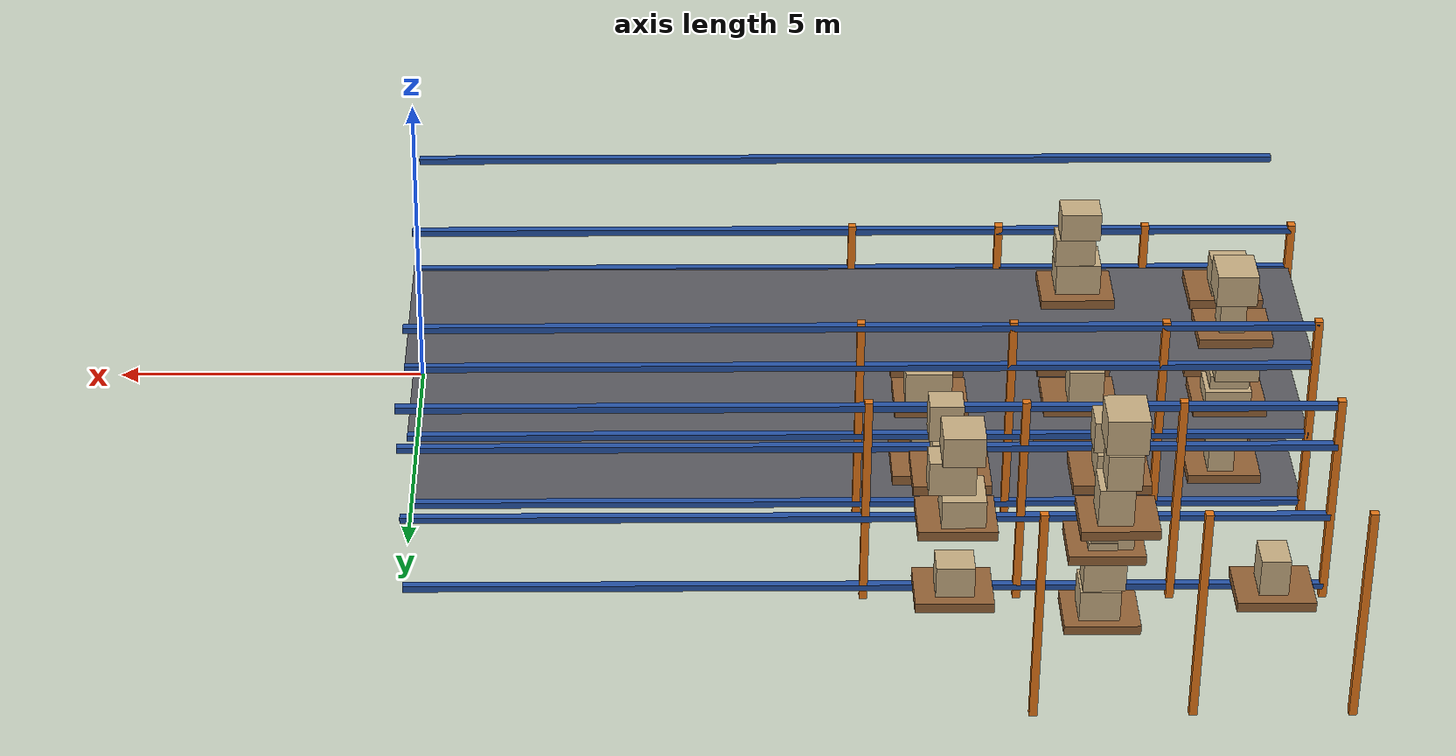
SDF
<sdf version="1.7">
 <world name="default">
  <model name="warehouse_racks">
   <static>1</static>
   <link name="r10_b3_1">
    <pose>-7 -1.2 3.4 0 0 0</pose>
    <collision name="c"><geometry><box><size>14 0.12 0.1</size></box></geometry></collision>
    <visual name="v">
     <geometry><box><size>14 0.12 0.1</size></box></geometry>
     <material>
      <ambient>0.149 0.329 0.659 1</ambient>
      <diffuse>0.149 0.329 0.659 1</diffuse>
      <specular>0.1 0.1 0.1 1</specular>
     </material>
    </visual>
   </link>
   <link name="r20_u0_0">
    <pose>-14 1.2 1.75 0 0 0</pose>
    <collision name="c"><geometry><box><size>0.12 0.12 3.5</size></box></geometry></collision>
    <visual name="v">
     <geometry><box><size>0.12 0.12 3.5</size></box></geometry>
     <material>
      <ambient>0.910 0.471 0.086 1</ambient>
      <diffuse>0.910 0.471 0.086 1</diffuse>
      <specular>0.1 0.1 0.1 1</specular>
     </material>
    </visual>
   </link>
   <link name="r20_u0_1">
    <pose>-14 4.2 1.75 0 0 0</pose>
    <collision name="c"><geometry><box><size>0.12 0.12 3.5</size></box></geometry></collision>
    <visual name="v">
     <geometry><box><size>0.12 0.12 3.5</size></box></geometry>
     <material>
      <ambient>0.910 0.471 0.086 1</ambient>
      <diffuse>0.910 0.471 0.086 1</diffuse>
      <specular>0.1 0.1 0.1 1</specular>
     </material>
    </visual>
   </link>
   <link name="r20_u1_0">
    <pose>-11.6667 1.2 1.75 0 0 0</pose>
    <collision name="c"><geometry><box><size>0.12 0.12 3.5</size></box></geometry></collision>
    <visual name="v">
     <geometry><box><size>0.12 0.12 3.5</size></box></geometry>
     <material>
      <ambient>0.910 0.471 0.086 1</ambient>
      <diffuse>0.910 0.471 0.086 1</diffuse>
      <specular>0.1 0.1 0.1 1</specular>
     </material>
    </visual>
   </link>
   <link name="r20_u1_1">
    <pose>-11.6667 4.2 1.75 0 0 0</pose>
    <collision name="c"><geometry><box><size>0.12 0.12 3.5</size></box></geometry></collision>
    <visual name="v">
     <geometry><box><size>0.12 0.12 3.5</size></box></geometry>
     <material>
      <ambient>0.910 0.471 0.086 1</ambient>
      <diffuse>0.910 0.471 0.086 1</diffuse>
      <specular>0.1 0.1 0.1 1</specular>
     </material>
    </visual>
   </link>
   <link name="r20_u2_0">
    <pose>-9.33333 1.2 1.75 0 0 0</pose>
    <collision name="c"><geometry><box><size>0.12 0.12 3.5</size></box></geometry></collision>
    <visual name="v">
     <geometry><box><size>0.12 0.12 3.5</size></box></geometry>
     <material>
      <ambient>0.910 0.471 0.086 1</ambient>
      <diffuse>0.910 0.471 0.086 1</diffuse>
      <specular>0.1 0.1 0.1 1</specular>
     </material>
    </visual>
   </link>
   <link name="r20_u2_1">
    <pose>-9.33333 4.2 1.75 0 0 0</pose>
    <collision name="c"><geometry><box><size>0.12 0.12 3.5</size></box></geometry></collision>
    <visual name="v">
     <geometry><box><size>0.12 0.12 3.5</size></box></geometry>
     <material>
      <ambient>0.910 0.471 0.086 1</ambient>
      <diffuse>0.910 0.471 0.086 1</diffuse>
      <specular>0.1 0.1 0.1 1</specular>
     </material>
    </visual>
   </link>
   <link name="r20_u3_0">
    <pose>-7 1.2 1.75 0 0 0</pose>
    <collision name="c"><geometry><box><size>0.12 0.12 3.5</size></box></geometry></collision>
    <visual name="v">
     <geometry><box><size>0.12 0.12 3.5</size></box></geometry>
     <material>
      <ambient>0.910 0.471 0.086 1</ambient>
      <diffuse>0.910 0.471 0.086 1</diffuse>
      <specular>0.1 0.1 0.1 1</specular>
     </material>
    </visual>
   </link>
   <link name="r20_u3_1">
    <pose>-7 4.2 1.75 0 0 0</pose>
    <collision name="c"><geometry><box><size>0.12 0.12 3.5</size></box></geometry></collision>
    <visual name="v">
     <geometry><box><size>0.12 0.12 3.5</size></box></geometry>
     <material>
      <ambient>0.910 0.471 0.086 1</ambient>
      <diffuse>0.910 0.471 0.086 1</diffuse>
      <specular>0.1 0.1 0.1 1</specular>
     </material>
    </visual>
   </link>
   <link name="r20_b0_0">
    <pose>-7 1.2 0.2 0 0 0</pose>
    <collision name="c"><geometry><box><size>14 0.12 0.1</size></box></geometry></collision>
    <visual name="v">
     <geometry><box><size>14 0.12 0.1</size></box></geometry>
     <material>
      <ambient>0.149 0.329 0.659 1</ambient>
      <diffuse>0.149 0.329 0.659 1</diffuse>
      <specular>0.1 0.1 0.1 1</specular>
     </material>
    </visual>
   </link>
   <link name="r20_b0_1">
    <pose>-7 4.2 0.2 0 0 0</pose>
    <collision name="c"><geometry><box><size>14 0.12 0.1</size></box></geometry></collision>
    <visual name="v">
     <geometry><box><size>14 0.12 0.1</size></box></geometry>
     <material>
      <ambient>0.149 0.329 0.659 1</ambient>
      <diffuse>0.149 0.329 0.659 1</diffuse>
      <specular>0.1 0.1 0.1 1</specular>
     </material>
    </visual>
   </link>
   <link name="r20_b1_0">
    <pose>-7 1.2 1.45 0 0 0</pose>
    <collision name="c"><geometry><box><size>14 0.12 0.1</size></box></geometry></collision>
    <visual name="v">
     <geometry><box><size>14 0.12 0.1</size></box></geometry>
     <material>
      <ambient>0.149 0.329 0.659 1</ambient>
      <diffuse>0.149 0.329 0.659 1</diffuse>
      <specular>0.1 0.1 0.1 1</specular>
     </material>
    </visual>
   </link>
   <link name="r20_b1_1">
    <pose>-7 4.2 1.45 0 0 0</pose>
    <collision name="c"><geometry><box><size>14 0.12 0.1</size></box></geometry></collision>
    <visual name="v">
     <geometry><box><size>14 0.12 0.1</size></box></geometry>
     <material>
      <ambient>0.149 0.329 0.659 1</ambient>
      <diffuse>0.149 0.329 0.659 1</diffuse>
      <specular>0.1 0.1 0.1 1</specular>
     </material>
    </visual>
   </link>
   <link name="r20_b2_0">
    <pose>-7 1.2 2.7 0 0 0</pose>
    <collision name="c"><geometry><box><size>14 0.12 0.1</size></box></geometry></collision>
    <visual name="v">
     <geometry><box><size>14 0.12 0.1</size></box></geometry>
     <material>
      <ambient>0.149 0.329 0.659 1</ambient>
      <diffuse>0.149 0.329 0.659 1</diffuse>
      <specular>0.1 0.1 0.1 1</specular>
     </material>
    </visual>
   </link>
   <link name="r20_b2_1">
    <pose>-7 4.2 2.7 0 0 0</pose>
    <collision name="c"><geometry><box><size>14 0.12 0.1</size></box></geometry></collision>
    <visual name="v">
     <geometry><box><size>14 0.12 0.1</size></box></geometry>
     <material>
      <ambient>0.149 0.329 0.659 1</ambient>
      <diffuse>0.149 0.329 0.659 1</diffuse>
      <specular>0.1 0.1 0.1 1</specular>
     </material>
    </visual>
   </link>
   <link name="r20_b3_0">
    <pose>-7 1.2 3.4 0 0 0</pose>
    <collision name="c"><geometry><box><size>14 0.12 0.1</size></box></geometry></collision>
    <visual name="v">
     <geometry><box><size>14 0.12 0.1</size></box></geometry>
     <material>
      <ambient>0.149 0.329 0.659 1</ambient>
      <diffuse>0.149 0.329 0.659 1</diffuse>
      <specular>0.1 0.1 0.1 1</specular>
     </material>
    </visual>
   </link>
   <link name="r20_b3_1">
    <pose>-7 4.2 3.4 0 0 0</pose>
    <collision name="c"><geometry><box><size>14 0.12 0.1</size></box></geometry></collision>
    <visual name="v">
     <geometry><box><size>14 0.12 0.1</size></box></geometry>
     <material>
      <ambient>0.149 0.329 0.659 1</ambient>
      <diffuse>0.149 0.329 0.659 1</diffuse>
      <specular>0.1 0.1 0.1 1</specular>
     </material>
    </visual>
   </link>
   <link name="r20_d0">
    <pose>-7 2.7 0.2 0 0 0</pose>
    <collision name="c"><geometry><box><size>14 3 0.05</size></box></geometry></collision>
    <visual name="v">
     <geometry><box><size>14 3 0.05</size></box></geometry>
     <material>
      <ambient>0.361 0.361 0.384 1</ambient>
      <diffuse>0.361 0.361 0.384 1</diffuse>
      <specular>0.1 0.1 0.1 1</specular>
     </material>
    </visual>
   </link>
   <link name="r20_d1">
    <pose>-7 2.7 1.45 0 0 0</pose>
    <collision name="c"><geometry><box><size>14 3 0.05</size></box></geometry></collision>
    <visual name="v">
     <geometry><box><size>14 3 0.05</size></box></geometry>
     <material>
      <ambient>0.361 0.361 0.384 1</ambient>
      <diffuse>0.361 0.361 0.384 1</diffuse>
      <specular>0.1 0.1 0.1 1</specular>
     </material>
    </visual>
   </link>
   <link name="r20_d2">
    <pose>-7 2.7 2.7 0 0 0</pose>
    <collision name="c"><geometry><box><size>14 3 0.05</size></box></geometry></collision>
    <visual name="v">
     <geometry><box><size>14 3 0.05</size></box></geometry>
     <material>
      <ambient>0.361 0.361 0.384 1</ambient>
      <diffuse>0.361 0.361 0.384 1</diffuse>
      <specular>0.1 0.1 0.1 1</specular>
     </material>
    </visual>
   </link>
   <link name="r30_u0_0">
    <pose>-14 6.5 1.75 0 0 0</pose>
    <collision name="c"><geometry><box><size>0.12 0.12 3.5</size></box></geometry></collision>
    <visual name="v">
     <geometry><box><size>0.12 0.12 3.5</size></box></geometry>
     <material>
      <ambient>0.910 0.471 0.086 1</ambient>
      <diffuse>0.910 0.471 0.086 1</diffuse>
      <specular>0.1 0.1 0.1 1</specular>
     </material>
    </visual>
   </link>
   <link name="r30_u0_1">
    <pose>-14 9.5 1.75 0 0 0</pose>
    <collision name="c"><geometry><box><size>0.12 0.12 3.5</size></box></geometry></collision>
    <visual name="v">
     <geometry><box><size>0.12 0.12 3.5</size></box></geometry>
     <material>
      <ambient>0.910 0.471 0.086 1</ambient>
      <diffuse>0.910 0.471 0.086 1</diffuse>
      <specular>0.1 0.1 0.1 1</specular>
     </material>
    </visual>
   </link>
   <link name="r30_u1_0">
    <pose>-11.6667 6.5 1.75 0 0 0</pose>
    <collision name="c"><geometry><box><size>0.12 0.12 3.5</size></box></geometry></collision>
    <visual name="v">
     <geometry><box><size>0.12 0.12 3.5</size></box></geometry>
     <material>
      <ambient>0.910 0.471 0.086 1</ambient>
      <diffuse>0.910 0.471 0.086 1</diffuse>
      <specular>0.1 0.1 0.1 1</specular>
     </material>
    </visual>
   </link>
   <link name="r30_u1_1">
    <pose>-11.6667 9.5 1.75 0 0 0</pose>
    <collision name="c"><geometry><box><size>0.12 0.12 3.5</size></box></geometry></collision>
    <visual name="v">
     <geometry><box><size>0.12 0.12 3.5</size></box></geometry>
     <material>
      <ambient>0.910 0.471 0.086 1</ambient>
      <diffuse>0.910 0.471 0.086 1</diffuse>
      <specular>0.1 0.1 0.1 1</specular>
     </material>
    </visual>
   </link>
   <link name="r30_u2_0">
    <pose>-9.33333 6.5 1.75 0 0 0</pose>
    <collision name="c"><geometry><box><size>0.12 0.12 3.5</size></box></geometry></collision>
    <visual name="v">
     <geometry><box><size>0.12 0.12 3.5</size></box></geometry>
     <material>
      <ambient>0.910 0.471 0.086 1</ambient>
      <diffuse>0.910 0.471 0.086 1</diffuse>
      <specular>0.1 0.1 0.1 1</specular>
     </material>
    </visual>
   </link>
   <link name="r30_u2_1">
    <pose>-9.33333 9.5 1.75 0 0 0</pose>
    <collision name="c"><geometry><box><size>0.12 0.12 3.5</size></box></geometry></collision>
    <visual name="v">
     <geometry><box><size>0.12 0.12 3.5</size></box></geometry>
     <material>
      <ambient>0.910 0.471 0.086 1</ambient>
      <diffuse>0.910 0.471 0.086 1</diffuse>
      <specular>0.1 0.1 0.1 1</specular>
     </material>
    </visual>
   </link>
   <link name="r30_u3_0">
    <pose>-7 6.5 1.75 0 0 0</pose>
    <collision name="c"><geometry><box><size>0.12 0.12 3.5</size></box></geometry></collision>
    <visual name="v">
     <geometry><box><size>0.12 0.12 3.5</size></box></geometry>
     <material>
      <ambient>0.910 0.471 0.086 1</ambient>
      <diffuse>0.910 0.471 0.086 1</diffuse>
      <specular>0.1 0.1 0.1 1</specular>
     </material>
    </visual>
   </link>
   <link name="r30_b0_0">
    <pose>-7 6.5 0.2 0 0 0</pose>
    <collision name="c"><geometry><box><size>14 0.12 0.1</size></box></geometry></collision>
    <visual name="v">
     <geometry><box><size>14 0.12 0.1</size></box></geometry>
     <material>
      <ambient>0.149 0.329 0.659 1</ambient>
      <diffuse>0.149 0.329 0.659 1</diffuse>
      <specular>0.1 0.1 0.1 1</specular>
     </material>
    </visual>
   </link>
   <link name="r30_b1_0">
    <pose>-7 6.5 1.45 0 0 0</pose>
    <collision name="c"><geometry><box><size>14 0.12 0.1</size></box></geometry></collision>
    <visual name="v">
     <geometry><box><size>14 0.12 0.1</size></box></geometry>
     <material>
      <ambient>0.149 0.329 0.659 1</ambient>
      <diffuse>0.149 0.329 0.659 1</diffuse>
      <specular>0.1 0.1 0.1 1</specular>
     </material>
    </visual>
   </link>
   <link name="r30_b2_0">
    <pose>-7 6.5 2.7 0 0 0</pose>
    <collision name="c"><geometry><box><size>14 0.12 0.1</size></box></geometry></collision>
    <visual name="v">
     <geometry><box><size>14 0.12 0.1</size></box></geometry>
     <material>
      <ambient>0.149 0.329 0.659 1</ambient>
      <diffuse>0.149 0.329 0.659 1</diffuse>
      <specular>0.1 0.1 0.1 1</specular>
     </material>
    </visual>
   </link>
   <link name="r30_b3_0">
    <pose>-7 6.5 3.4 0 0 0</pose>
    <collision name="c"><geometry><box><size>14 0.12 0.1</size></box></geometry></collision>
    <visual name="v">
     <geometry><box><size>14 0.12 0.1</size></box></geometry>
     <material>
      <ambient>0.149 0.329 0.659 1</ambient>
      <diffuse>0.149 0.329 0.659 1</diffuse>
      <specular>0.1 0.1 0.1 1</specular>
     </material>
    </visual>
   </link>
  </model>
  <model name="warehouse_loads">
   <static>1</static>
   <link name="r20L0_0_0_p">
    <pose>-12.8333 2.1 0.325 0 0 0</pose>
    <collision name="c"><geometry><box><size>1.15 0.95 0.15</size></box></geometry></collision>
    <visual name="v">
     <geometry><box><size>1.15 0.95 0.15</size></box></geometry>
     <material>
      <ambient>0.588 0.392 0.216 1</ambient>
      <diffuse>0.588 0.392 0.216 1</diffuse>
      <specular>0.1 0.1 0.1 1</specular>
     </material>
    </visual>
   </link>
   <link name="r20L0_0_0_c0">
    <pose>-12.8461 2.15769 0.644223 0 0 0</pose>
    <collision name="c"><geometry><box><size>0.649089 0.493096 0.488447</size></box></geometry></collision>
    <visual name="v">
     <geometry><box><size>0.649089 0.493096 0.488447</size></box></geometry>
     <material>
      <ambient>0.792 0.690 0.518 1</ambient>
      <diffuse>0.792 0.690 0.518 1</diffuse>
      <specular>0.1 0.1 0.1 1</specular>
     </material>
    </visual>
   </link>
   <link name="r20L0_0_0_c1">
    <pose>-12.7403 2.0434 1.1437 0 0 0</pose>
    <collision name="c"><geometry><box><size>0.583136 0.492854 0.510501</size></box></geometry></collision>
    <visual name="v">
     <geometry><box><size>0.583136 0.492854 0.510501</size></box></geometry>
     <material>
      <ambient>0.792 0.690 0.518 1</ambient>
      <diffuse>0.792 0.690 0.518 1</diffuse>
      <specular>0.1 0.1 0.1 1</specular>
     </material>
    </visual>
   </link>
   <link name="r20L0_0_1_p">
    <pose>-12.8333 3.3 0.325 0 0 0</pose>
    <collision name="c"><geometry><box><size>1.15 0.95 0.15</size></box></geometry></collision>
    <visual name="v">
     <geometry><box><size>1.15 0.95 0.15</size></box></geometry>
     <material>
      <ambient>0.588 0.392 0.216 1</ambient>
      <diffuse>0.588 0.392 0.216 1</diffuse>
      <specular>0.1 0.1 0.1 1</specular>
     </material>
    </visual>
   </link>
   <link name="r20L0_0_1_c0">
    <pose>-12.7846 3.38894 0.604514 0 0 0</pose>
    <collision name="c"><geometry><box><size>0.40533 0.491129 0.409027</size></box></geometry></collision>
    <visual name="v">
     <geometry><box><size>0.40533 0.491129 0.409027</size></box></geometry>
     <material>
      <ambient>0.792 0.690 0.518 1</ambient>
      <diffuse>0.792 0.690 0.518 1</diffuse>
      <specular>0.1 0.1 0.1 1</specular>
     </material>
    </visual>
   </link>
   <link name="r20L0_0_1_c1">
    <pose>-12.8676 3.24783 1.09405 0 0 0</pose>
    <collision name="c"><geometry><box><size>0.661153 0.514405 0.570041</size></box></geometry></collision>
    <visual name="v">
     <geometry><box><size>0.661153 0.514405 0.570041</size></box></geometry>
     <material>
      <ambient>0.792 0.690 0.518 1</ambient>
      <diffuse>0.792 0.690 0.518 1</diffuse>
      <specular>0.1 0.1 0.1 1</specular>
     </material>
    </visual>
   </link>
   <link name="r20L0_0_1_c2">
    <pose>-12.8003 3.3958 1.64067 0 0 0</pose>
    <collision name="c"><geometry><box><size>0.717649 0.620744 0.523211</size></box></geometry></collision>
    <visual name="v">
     <geometry><box><size>0.717649 0.620744 0.523211</size></box></geometry>
     <material>
      <ambient>0.792 0.690 0.518 1</ambient>
      <diffuse>0.792 0.690 0.518 1</diffuse>
      <specular>0.1 0.1 0.1 1</specular>
     </material>
    </visual>
   </link>
   <link name="r20L0_1_0_p">
    <pose>-10.5 2.1 0.325 0 0 0</pose>
    <collision name="c"><geometry><box><size>1.15 0.95 0.15</size></box></geometry></collision>
    <visual name="v">
     <geometry><box><size>1.15 0.95 0.15</size></box></geometry>
     <material>
      <ambient>0.588 0.392 0.216 1</ambient>
      <diffuse>0.588 0.392 0.216 1</diffuse>
      <specular>0.1 0.1 0.1 1</specular>
     </material>
    </visual>
   </link>
   <link name="r20L0_1_0_c0">
    <pose>-10.5947 2.19114 0.575798 0 0 0</pose>
    <collision name="c"><geometry><box><size>0.565249 0.585716 0.351595</size></box></geometry></collision>
    <visual name="v">
     <geometry><box><size>0.565249 0.585716 0.351595</size></box></geometry>
     <material>
      <ambient>0.792 0.690 0.518 1</ambient>
      <diffuse>0.792 0.690 0.518 1</diffuse>
      <specular>0.1 0.1 0.1 1</specular>
     </material>
    </visual>
   </link>
   <link name="r20L0_1_0_c1">
    <pose>-10.5217 2.11707 1.02525 0 0 0</pose>
    <collision name="c"><geometry><box><size>0.48184 0.709666 0.547301</size></box></geometry></collision>
    <visual name="v">
     <geometry><box><size>0.48184 0.709666 0.547301</size></box></geometry>
     <material>
      <ambient>0.792 0.690 0.518 1</ambient>
      <diffuse>0.792 0.690 0.518 1</diffuse>
      <specular>0.1 0.1 0.1 1</specular>
     </material>
    </visual>
   </link>
   <link name="r20L0_2_0_p">
    <pose>-8.16667 2.1 0.325 0 0 0</pose>
    <collision name="c"><geometry><box><size>1.15 0.95 0.15</size></box></geometry></collision>
    <visual name="v">
     <geometry><box><size>1.15 0.95 0.15</size></box></geometry>
     <material>
      <ambient>0.588 0.392 0.216 1</ambient>
      <diffuse>0.588 0.392 0.216 1</diffuse>
      <specular>0.1 0.1 0.1 1</specular>
     </material>
    </visual>
   </link>
   <link name="r20L0_2_0_c0">
    <pose>-8.24533 2.18579 0.578363 0 0 0</pose>
    <collision name="c"><geometry><box><size>0.718776 0.450608 0.356726</size></box></geometry></collision>
    <visual name="v">
     <geometry><box><size>0.718776 0.450608 0.356726</size></box></geometry>
     <material>
      <ambient>0.792 0.690 0.518 1</ambient>
      <diffuse>0.792 0.690 0.518 1</diffuse>
      <specular>0.1 0.1 0.1 1</specular>
     </material>
    </visual>
   </link>
   <link name="r20L0_2_0_c1">
    <pose>-8.25834 2.13853 0.935317 0 0 0</pose>
    <collision name="c"><geometry><box><size>0.520702 0.449645 0.357183</size></box></geometry></collision>
    <visual name="v">
     <geometry><box><size>0.520702 0.449645 0.357183</size></box></geometry>
     <material>
      <ambient>0.792 0.690 0.518 1</ambient>
      <diffuse>0.792 0.690 0.518 1</diffuse>
      <specular>0.1 0.1 0.1 1</specular>
     </material>
    </visual>
   </link>
   <link name="r20L0_2_0_c2">
    <pose>-8.25351 2.11809 1.38101 0 0 0</pose>
    <collision name="c"><geometry><box><size>0.621857 0.643953 0.534196</size></box></geometry></collision>
    <visual name="v">
     <geometry><box><size>0.621857 0.643953 0.534196</size></box></geometry>
     <material>
      <ambient>0.792 0.690 0.518 1</ambient>
      <diffuse>0.792 0.690 0.518 1</diffuse>
      <specular>0.1 0.1 0.1 1</specular>
     </material>
    </visual>
   </link>
   <link name="r20L0_2_1_p">
    <pose>-8.16667 3.3 0.325 0 0 0</pose>
    <collision name="c"><geometry><box><size>1.15 0.95 0.15</size></box></geometry></collision>
    <visual name="v">
     <geometry><box><size>1.15 0.95 0.15</size></box></geometry>
     <material>
      <ambient>0.588 0.392 0.216 1</ambient>
      <diffuse>0.588 0.392 0.216 1</diffuse>
      <specular>0.1 0.1 0.1 1</specular>
     </material>
    </visual>
   </link>
   <link name="r20L0_2_1_c0">
    <pose>-8.13383 3.37594 0.641737 0 0 0</pose>
    <collision name="c"><geometry><box><size>0.469759 0.734099 0.483474</size></box></geometry></collision>
    <visual name="v">
     <geometry><box><size>0.469759 0.734099 0.483474</size></box></geometry>
     <material>
      <ambient>0.792 0.690 0.518 1</ambient>
      <diffuse>0.792 0.690 0.518 1</diffuse>
      <specular>0.1 0.1 0.1 1</specular>
     </material>
    </visual>
   </link>
   <link name="r20L0_2_1_c1">
    <pose>-8.21735 3.24063 1.10645 0 0 0</pose>
    <collision name="c"><geometry><box><size>0.66452 0.648936 0.445961</size></box></geometry></collision>
    <visual name="v">
     <geometry><box><size>0.66452 0.648936 0.445961</size></box></geometry>
     <material>
      <ambient>0.792 0.690 0.518 1</ambient>
      <diffuse>0.792 0.690 0.518 1</diffuse>
      <specular>0.1 0.1 0.1 1</specular>
     </material>
    </visual>
   </link>
   <link name="r20L1_0_0_p">
    <pose>-12.8333 2.1 1.575 0 0 0</pose>
    <collision name="c"><geometry><box><size>1.15 0.95 0.15</size></box></geometry></collision>
    <visual name="v">
     <geometry><box><size>1.15 0.95 0.15</size></box></geometry>
     <material>
      <ambient>0.588 0.392 0.216 1</ambient>
      <diffuse>0.588 0.392 0.216 1</diffuse>
      <specular>0.1 0.1 0.1 1</specular>
     </material>
    </visual>
   </link>
   <link name="r20L1_0_0_c0">
    <pose>-12.774 2.0369 1.88644 0 0 0</pose>
    <collision name="c"><geometry><box><size>0.401527 0.571788 0.472871</size></box></geometry></collision>
    <visual name="v">
     <geometry><box><size>0.401527 0.571788 0.472871</size></box></geometry>
     <material>
      <ambient>0.792 0.690 0.518 1</ambient>
      <diffuse>0.792 0.690 0.518 1</diffuse>
      <specular>0.1 0.1 0.1 1</specular>
     </material>
    </visual>
   </link>
   <link name="r20L1_0_1_p">
    <pose>-12.8333 3.3 1.575 0 0 0</pose>
    <collision name="c"><geometry><box><size>1.15 0.95 0.15</size></box></geometry></collision>
    <visual name="v">
     <geometry><box><size>1.15 0.95 0.15</size></box></geometry>
     <material>
      <ambient>0.588 0.392 0.216 1</ambient>
      <diffuse>0.588 0.392 0.216 1</diffuse>
      <specular>0.1 0.1 0.1 1</specular>
     </material>
    </visual>
   </link>
   <link name="r20L1_0_1_c0">
    <pose>-12.8177 3.23178 1.88939 0 0 0</pose>
    <collision name="c"><geometry><box><size>0.607394 0.735022 0.478785</size></box></geometry></collision>
    <visual name="v">
     <geometry><box><size>0.607394 0.735022 0.478785</size></box></geometry>
     <material>
      <ambient>0.792 0.690 0.518 1</ambient>
      <diffuse>0.792 0.690 0.518 1</diffuse>
      <specular>0.1 0.1 0.1 1</specular>
     </material>
    </visual>
   </link>
   <link name="r20L1_0_1_c1">
    <pose>-12.9002 3.38774 2.33273 0 0 0</pose>
    <collision name="c"><geometry><box><size>0.685334 0.728401 0.407882</size></box></geometry></collision>
    <visual name="v">
     <geometry><box><size>0.685334 0.728401 0.407882</size></box></geometry>
     <material>
      <ambient>0.792 0.690 0.518 1</ambient>
      <diffuse>0.792 0.690 0.518 1</diffuse>
      <specular>0.1 0.1 0.1 1</specular>
     </material>
    </visual>
   </link>
   <link name="r20L1_1_0_p">
    <pose>-10.5 2.1 1.575 0 0 0</pose>
    <collision name="c"><geometry><box><size>1.15 0.95 0.15</size></box></geometry></collision>
    <visual name="v">
     <geometry><box><size>1.15 0.95 0.15</size></box></geometry>
     <material>
      <ambient>0.588 0.392 0.216 1</ambient>
      <diffuse>0.588 0.392 0.216 1</diffuse>
      <specular>0.1 0.1 0.1 1</specular>
     </material>
    </visual>
   </link>
   <link name="r20L1_1_0_c0">
    <pose>-10.5791 2.06533 1.89516 0 0 0</pose>
    <collision name="c"><geometry><box><size>0.571602 0.74689 0.490314</size></box></geometry></collision>
    <visual name="v">
     <geometry><box><size>0.571602 0.74689 0.490314</size></box></geometry>
     <material>
      <ambient>0.792 0.690 0.518 1</ambient>
      <diffuse>0.792 0.690 0.518 1</diffuse>
      <specular>0.1 0.1 0.1 1</specular>
     </material>
    </visual>
   </link>
   <link name="r20L1_1_1_p">
    <pose>-10.5 3.3 1.575 0 0 0</pose>
    <collision name="c"><geometry><box><size>1.15 0.95 0.15</size></box></geometry></collision>
    <visual name="v">
     <geometry><box><size>1.15 0.95 0.15</size></box></geometry>
     <material>
      <ambient>0.588 0.392 0.216 1</ambient>
      <diffuse>0.588 0.392 0.216 1</diffuse>
      <specular>0.1 0.1 0.1 1</specular>
     </material>
    </visual>
   </link>
   <link name="r20L1_1_1_c0">
    <pose>-10.5828 3.37769 1.9363 0 0 0</pose>
    <collision name="c"><geometry><box><size>0.540445 0.53811 0.572602</size></box></geometry></collision>
    <visual name="v">
     <geometry><box><size>0.540445 0.53811 0.572602</size></box></geometry>
     <material>
      <ambient>0.792 0.690 0.518 1</ambient>
      <diffuse>0.792 0.690 0.518 1</diffuse>
      <specular>0.1 0.1 0.1 1</specular>
     </material>
    </visual>
   </link>
   <link name="r20L1_2_0_p">
    <pose>-8.16667 2.1 1.575 0 0 0</pose>
    <collision name="c"><geometry><box><size>1.15 0.95 0.15</size></box></geometry></collision>
    <visual name="v">
     <geometry><box><size>1.15 0.95 0.15</size></box></geometry>
     <material>
      <ambient>0.588 0.392 0.216 1</ambient>
      <diffuse>0.588 0.392 0.216 1</diffuse>
      <specular>0.1 0.1 0.1 1</specular>
     </material>
    </visual>
   </link>
   <link name="r20L1_2_0_c0">
    <pose>-8.15768 2.03422 1.87851 0 0 0</pose>
    <collision name="c"><geometry><box><size>0.530182 0.506099 0.457015</size></box></geometry></collision>
    <visual name="v">
     <geometry><box><size>0.530182 0.506099 0.457015</size></box></geometry>
     <material>
      <ambient>0.792 0.690 0.518 1</ambient>
      <diffuse>0.792 0.690 0.518 1</diffuse>
      <specular>0.1 0.1 0.1 1</specular>
     </material>
    </visual>
   </link>
   <link name="r20L1_2_1_p">
    <pose>-8.16667 3.3 1.575 0 0 0</pose>
    <collision name="c"><geometry><box><size>1.15 0.95 0.15</size></box></geometry></collision>
    <visual name="v">
     <geometry><box><size>1.15 0.95 0.15</size></box></geometry>
     <material>
      <ambient>0.588 0.392 0.216 1</ambient>
      <diffuse>0.588 0.392 0.216 1</diffuse>
      <specular>0.1 0.1 0.1 1</specular>
     </material>
    </visual>
   </link>
   <link name="r20L1_2_1_c0">
    <pose>-8.12882 3.32107 1.89926 0 0 0</pose>
    <collision name="c"><geometry><box><size>0.730372 0.444408 0.498522</size></box></geometry></collision>
    <visual name="v">
     <geometry><box><size>0.730372 0.444408 0.498522</size></box></geometry>
     <material>
      <ambient>0.792 0.690 0.518 1</ambient>
      <diffuse>0.792 0.690 0.518 1</diffuse>
      <specular>0.1 0.1 0.1 1</specular>
     </material>
    </visual>
   </link>
   <link name="r20L2_0_0_p">
    <pose>-12.8333 2.1 2.825 0 0 0</pose>
    <collision name="c"><geometry><box><size>1.15 0.95 0.15</size></box></geometry></collision>
    <visual name="v">
     <geometry><box><size>1.15 0.95 0.15</size></box></geometry>
     <material>
      <ambient>0.588 0.392 0.216 1</ambient>
      <diffuse>0.588 0.392 0.216 1</diffuse>
      <specular>0.1 0.1 0.1 1</specular>
     </material>
    </visual>
   </link>
   <link name="r20L2_0_0_c0">
    <pose>-12.905 2.12074 3.13291 0 0 0</pose>
    <collision name="c"><geometry><box><size>0.57517 0.621332 0.46582</size></box></geometry></collision>
    <visual name="v">
     <geometry><box><size>0.57517 0.621332 0.46582</size></box></geometry>
     <material>
      <ambient>0.792 0.690 0.518 1</ambient>
      <diffuse>0.792 0.690 0.518 1</diffuse>
      <specular>0.1 0.1 0.1 1</specular>
     </material>
    </visual>
   </link>
   <link name="r20L2_0_1_p">
    <pose>-12.8333 3.3 2.825 0 0 0</pose>
    <collision name="c"><geometry><box><size>1.15 0.95 0.15</size></box></geometry></collision>
    <visual name="v">
     <geometry><box><size>1.15 0.95 0.15</size></box></geometry>
     <material>
      <ambient>0.588 0.392 0.216 1</ambient>
      <diffuse>0.588 0.392 0.216 1</diffuse>
      <specular>0.1 0.1 0.1 1</specular>
     </material>
    </visual>
   </link>
   <link name="r20L2_0_1_c0">
    <pose>-12.7931 3.31749 3.18161 0 0 0</pose>
    <collision name="c"><geometry><box><size>0.401931 0.484799 0.563223</size></box></geometry></collision>
    <visual name="v">
     <geometry><box><size>0.401931 0.484799 0.563223</size></box></geometry>
     <material>
      <ambient>0.792 0.690 0.518 1</ambient>
      <diffuse>0.792 0.690 0.518 1</diffuse>
      <specular>0.1 0.1 0.1 1</specular>
     </material>
    </visual>
   </link>
   <link name="r20L2_0_1_c1">
    <pose>-12.8028 3.37552 3.72171 0 0 0</pose>
    <collision name="c"><geometry><box><size>0.62652 0.696098 0.516974</size></box></geometry></collision>
    <visual name="v">
     <geometry><box><size>0.62652 0.696098 0.516974</size></box></geometry>
     <material>
      <ambient>0.792 0.690 0.518 1</ambient>
      <diffuse>0.792 0.690 0.518 1</diffuse>
      <specular>0.1 0.1 0.1 1</specular>
     </material>
    </visual>
   </link>
   <link name="r20L2_1_0_p">
    <pose>-10.5 2.1 2.825 0 0 0</pose>
    <collision name="c"><geometry><box><size>1.15 0.95 0.15</size></box></geometry></collision>
    <visual name="v">
     <geometry><box><size>1.15 0.95 0.15</size></box></geometry>
     <material>
      <ambient>0.588 0.392 0.216 1</ambient>
      <diffuse>0.588 0.392 0.216 1</diffuse>
      <specular>0.1 0.1 0.1 1</specular>
     </material>
    </visual>
   </link>
   <link name="r20L2_1_0_c0">
    <pose>-10.5092 2.0626 3.15519 0 0 0</pose>
    <collision name="c"><geometry><box><size>0.698355 0.637859 0.510385</size></box></geometry></collision>
    <visual name="v">
     <geometry><box><size>0.698355 0.637859 0.510385</size></box></geometry>
     <material>
      <ambient>0.792 0.690 0.518 1</ambient>
      <diffuse>0.792 0.690 0.518 1</diffuse>
      <specular>0.1 0.1 0.1 1</specular>
     </material>
    </visual>
   </link>
   <link name="r20L2_1_0_c1">
    <pose>-10.4435 2.14263 3.63783 0 0 0</pose>
    <collision name="c"><geometry><box><size>0.619897 0.434253 0.454895</size></box></geometry></collision>
    <visual name="v">
     <geometry><box><size>0.619897 0.434253 0.454895</size></box></geometry>
     <material>
      <ambient>0.792 0.690 0.518 1</ambient>
      <diffuse>0.792 0.690 0.518 1</diffuse>
      <specular>0.1 0.1 0.1 1</specular>
     </material>
    </visual>
   </link>
   <link name="r20L2_1_0_c2">
    <pose>-10.509 2.12431 4.09323 0 0 0</pose>
    <collision name="c"><geometry><box><size>0.620365 0.487521 0.455895</size></box></geometry></collision>
    <visual name="v">
     <geometry><box><size>0.620365 0.487521 0.455895</size></box></geometry>
     <material>
      <ambient>0.792 0.690 0.518 1</ambient>
      <diffuse>0.792 0.690 0.518 1</diffuse>
      <specular>0.1 0.1 0.1 1</specular>
     </material>
    </visual>
   </link>
   <link name="r30L0_1_0_p">
    <pose>-10.5 7.4 0.325 0 0 0</pose>
    <collision name="c"><geometry><box><size>1.15 0.95 0.15</size></box></geometry></collision>
    <visual name="v">
     <geometry><box><size>1.15 0.95 0.15</size></box></geometry>
     <material>
      <ambient>0.588 0.392 0.216 1</ambient>
      <diffuse>0.588 0.392 0.216 1</diffuse>
      <specular>0.1 0.1 0.1 1</specular>
     </material>
    </visual>
   </link>
   <link name="r30L0_1_0_c0">
    <pose>-10.4607 7.41926 0.653352 0 0 0</pose>
    <collision name="c"><geometry><box><size>0.614109 0.615845 0.506704</size></box></geometry></collision>
    <visual name="v">
     <geometry><box><size>0.614109 0.615845 0.506704</size></box></geometry>
     <material>
      <ambient>0.792 0.690 0.518 1</ambient>
      <diffuse>0.792 0.690 0.518 1</diffuse>
      <specular>0.1 0.1 0.1 1</specular>
     </material>
    </visual>
   </link>
   <link name="r30L0_1_0_c1">
    <pose>-10.5084 7.45253 1.16508 0 0 0</pose>
    <collision name="c"><geometry><box><size>0.638343 0.474375 0.516751</size></box></geometry></collision>
    <visual name="v">
     <geometry><box><size>0.638343 0.474375 0.516751</size></box></geometry>
     <material>
      <ambient>0.792 0.690 0.518 1</ambient>
      <diffuse>0.792 0.690 0.518 1</diffuse>
      <specular>0.1 0.1 0.1 1</specular>
     </material>
    </visual>
   </link>
   <link name="r30L0_1_0_c2">
    <pose>-10.4451 7.48282 1.60308 0 0 0</pose>
    <collision name="c"><geometry><box><size>0.435477 0.463454 0.359244</size></box></geometry></collision>
    <visual name="v">
     <geometry><box><size>0.435477 0.463454 0.359244</size></box></geometry>
     <material>
      <ambient>0.792 0.690 0.518 1</ambient>
      <diffuse>0.792 0.690 0.518 1</diffuse>
      <specular>0.1 0.1 0.1 1</specular>
     </material>
    </visual>
   </link>
   <link name="r30L1_0_1_p">
    <pose>-12.8333 8.6 1.575 0 0 0</pose>
    <collision name="c"><geometry><box><size>1.15 0.95 0.15</size></box></geometry></collision>
    <visual name="v">
     <geometry><box><size>1.15 0.95 0.15</size></box></geometry>
     <material>
      <ambient>0.588 0.392 0.216 1</ambient>
      <diffuse>0.588 0.392 0.216 1</diffuse>
      <specular>0.1 0.1 0.1 1</specular>
     </material>
    </visual>
   </link>
   <link name="r30L1_0_1_c0">
    <pose>-12.808 8.5854 1.93697 0 0 0</pose>
    <collision name="c"><geometry><box><size>0.429024 0.565267 0.573943</size></box></geometry></collision>
    <visual name="v">
     <geometry><box><size>0.429024 0.565267 0.573943</size></box></geometry>
     <material>
      <ambient>0.792 0.690 0.518 1</ambient>
      <diffuse>0.792 0.690 0.518 1</diffuse>
      <specular>0.1 0.1 0.1 1</specular>
     </material>
    </visual>
   </link>
   <link name="r30L1_1_0_p">
    <pose>-10.5 7.4 1.575 0 0 0</pose>
    <collision name="c"><geometry><box><size>1.15 0.95 0.15</size></box></geometry></collision>
    <visual name="v">
     <geometry><box><size>1.15 0.95 0.15</size></box></geometry>
     <material>
      <ambient>0.588 0.392 0.216 1</ambient>
      <diffuse>0.588 0.392 0.216 1</diffuse>
      <specular>0.1 0.1 0.1 1</specular>
     </material>
    </visual>
   </link>
   <link name="r30L1_1_0_c0">
    <pose>-10.5824 7.47391 1.94579 0 0 0</pose>
    <collision name="c"><geometry><box><size>0.639316 0.442585 0.591587</size></box></geometry></collision>
    <visual name="v">
     <geometry><box><size>0.639316 0.442585 0.591587</size></box></geometry>
     <material>
      <ambient>0.792 0.690 0.518 1</ambient>
      <diffuse>0.792 0.690 0.518 1</diffuse>
      <specular>0.1 0.1 0.1 1</specular>
     </material>
    </visual>
   </link>
   <link name="r30L1_2_1_p">
    <pose>-8.16667 8.6 1.575 0 0 0</pose>
    <collision name="c"><geometry><box><size>1.15 0.95 0.15</size></box></geometry></collision>
    <visual name="v">
     <geometry><box><size>1.15 0.95 0.15</size></box></geometry>
     <material>
      <ambient>0.588 0.392 0.216 1</ambient>
      <diffuse>0.588 0.392 0.216 1</diffuse>
      <specular>0.1 0.1 0.1 1</specular>
     </material>
    </visual>
   </link>
   <link name="r30L1_2_1_c0">
    <pose>-8.17651 8.64884 1.89612 0 0 0</pose>
    <collision name="c"><geometry><box><size>0.565316 0.496406 0.492247</size></box></geometry></collision>
    <visual name="v">
     <geometry><box><size>0.565316 0.496406 0.492247</size></box></geometry>
     <material>
      <ambient>0.792 0.690 0.518 1</ambient>
      <diffuse>0.792 0.690 0.518 1</diffuse>
      <specular>0.1 0.1 0.1 1</specular>
     </material>
    </visual>
   </link>
   <link name="r30L2_1_0_p">
    <pose>-10.5 7.4 2.825 0 0 0</pose>
    <collision name="c"><geometry><box><size>1.15 0.95 0.15</size></box></geometry></collision>
    <visual name="v">
     <geometry><box><size>1.15 0.95 0.15</size></box></geometry>
     <material>
      <ambient>0.588 0.392 0.216 1</ambient>
      <diffuse>0.588 0.392 0.216 1</diffuse>
      <specular>0.1 0.1 0.1 1</specular>
     </material>
    </visual>
   </link>
   <link name="r30L2_1_0_c0">
    <pose>-10.5456 7.45095 3.13159 0 0 0</pose>
    <collision name="c"><geometry><box><size>0.566937 0.672333 0.463189</size></box></geometry></collision>
    <visual name="v">
     <geometry><box><size>0.566937 0.672333 0.463189</size></box></geometry>
     <material>
      <ambient>0.792 0.690 0.518 1</ambient>
      <diffuse>0.792 0.690 0.518 1</diffuse>
      <specular>0.1 0.1 0.1 1</specular>
     </material>
    </visual>
   </link>
   <link name="r30L2_1_0_c1">
    <pose>-10.4698 7.46039 3.61592 0 0 0</pose>
    <collision name="c"><geometry><box><size>0.51686 0.497967 0.505462</size></box></geometry></collision>
    <visual name="v">
     <geometry><box><size>0.51686 0.497967 0.505462</size></box></geometry>
     <material>
      <ambient>0.792 0.690 0.518 1</ambient>
      <diffuse>0.792 0.690 0.518 1</diffuse>
      <specular>0.1 0.1 0.1 1</specular>
     </material>
    </visual>
   </link>
   <link name="r30L2_1_1_p">
    <pose>-10.5 8.6 2.825 0 0 0</pose>
    <collision name="c"><geometry><box><size>1.15 0.95 0.15</size></box></geometry></collision>
    <visual name="v">
     <geometry><box><size>1.15 0.95 0.15</size></box></geometry>
     <material>
      <ambient>0.588 0.392 0.216 1</ambient>
      <diffuse>0.588 0.392 0.216 1</diffuse>
      <specular>0.1 0.1 0.1 1</specular>
     </material>
    </visual>
   </link>
   <link name="r30L2_1_1_c0">
    <pose>-10.4337 8.62023 3.19718 0 0 0</pose>
    <collision name="c"><geometry><box><size>0.516214 0.612038 0.594362</size></box></geometry></collision>
    <visual name="v">
     <geometry><box><size>0.516214 0.612038 0.594362</size></box></geometry>
     <material>
      <ambient>0.792 0.690 0.518 1</ambient>
      <diffuse>0.792 0.690 0.518 1</diffuse>
      <specular>0.1 0.1 0.1 1</specular>
     </material>
    </visual>
   </link>
   <link name="r30L2_1_1_c1">
    <pose>-10.5247 8.63696 3.78038 0 0 0</pose>
    <collision name="c"><geometry><box><size>0.508009 0.549997 0.572031</size></box></geometry></collision>
    <visual name="v">
     <geometry><box><size>0.508009 0.549997 0.572031</size></box></geometry>
     <material>
      <ambient>0.792 0.690 0.518 1</ambient>
      <diffuse>0.792 0.690 0.518 1</diffuse>
      <specular>0.1 0.1 0.1 1</specular>
     </material>
    </visual>
   </link>
   <link name="r30L2_1_1_c2">
    <pose>-10.5433 8.50034 4.34233 0 0 0</pose>
    <collision name="c"><geometry><box><size>0.610624 0.713641 0.55187</size></box></geometry></collision>
    <visual name="v">
     <geometry><box><size>0.610624 0.713641 0.55187</size></box></geometry>
     <material>
      <ambient>0.792 0.690 0.518 1</ambient>
      <diffuse>0.792 0.690 0.518 1</diffuse>
      <specular>0.1 0.1 0.1 1</specular>
     </material>
    </visual>
   </link>
   <link name="r30L2_2_0_p">
    <pose>-8.16667 7.4 2.825 0 0 0</pose>
    <collision name="c"><geometry><box><size>1.15 0.95 0.15</size></box></geometry></collision>
    <visual name="v">
     <geometry><box><size>1.15 0.95 0.15</size></box></geometry>
     <material>
      <ambient>0.588 0.392 0.216 1</ambient>
      <diffuse>0.588 0.392 0.216 1</diffuse>
      <specular>0.1 0.1 0.1 1</specular>
     </material>
    </visual>
   </link>
   <link name="r30L2_2_0_c0">
    <pose>-8.114 7.45662 3.19007 0 0 0</pose>
    <collision name="c"><geometry><box><size>0.493808 0.455048 0.580149</size></box></geometry></collision>
    <visual name="v">
     <geometry><box><size>0.493808 0.455048 0.580149</size></box></geometry>
     <material>
      <ambient>0.792 0.690 0.518 1</ambient>
      <diffuse>0.792 0.690 0.518 1</diffuse>
      <specular>0.1 0.1 0.1 1</specular>
     </material>
    </visual>
   </link>
   <link name="r30L2_2_0_c1">
    <pose>-8.0681 7.3294 3.76648 0 0 0</pose>
    <collision name="c"><geometry><box><size>0.500983 0.449234 0.572653</size></box></geometry></collision>
    <visual name="v">
     <geometry><box><size>0.500983 0.449234 0.572653</size></box></geometry>
     <material>
      <ambient>0.792 0.690 0.518 1</ambient>
      <diffuse>0.792 0.690 0.518 1</diffuse>
      <specular>0.1 0.1 0.1 1</specular>
     </material>
    </visual>
   </link>
   <link name="r30L2_2_1_p">
    <pose>-8.16667 8.6 2.825 0 0 0</pose>
    <collision name="c"><geometry><box><size>1.15 0.95 0.15</size></box></geometry></collision>
    <visual name="v">
     <geometry><box><size>1.15 0.95 0.15</size></box></geometry>
     <material>
      <ambient>0.588 0.392 0.216 1</ambient>
      <diffuse>0.588 0.392 0.216 1</diffuse>
      <specular>0.1 0.1 0.1 1</specular>
     </material>
    </visual>
   </link>
   <link name="r30L2_2_1_c0">
    <pose>-8.24965 8.61073 3.11836 0 0 0</pose>
    <collision name="c"><geometry><box><size>0.639624 0.719812 0.436713</size></box></geometry></collision>
    <visual name="v">
     <geometry><box><size>0.639624 0.719812 0.436713</size></box></geometry>
     <material>
      <ambient>0.792 0.690 0.518 1</ambient>
      <diffuse>0.792 0.690 0.518 1</diffuse>
      <specular>0.1 0.1 0.1 1</specular>
     </material>
    </visual>
   </link>
   <link name="r30L2_2_1_c1">
    <pose>-8.08032 8.54681 3.60549 0 0 0</pose>
    <collision name="c"><geometry><box><size>0.679086 0.470151 0.537546</size></box></geometry></collision>
    <visual name="v">
     <geometry><box><size>0.679086 0.470151 0.537546</size></box></geometry>
     <material>
      <ambient>0.792 0.690 0.518 1</ambient>
      <diffuse>0.792 0.690 0.518 1</diffuse>
      <specular>0.1 0.1 0.1 1</specular>
     </material>
    </visual>
   </link>
   <link name="r30L2_2_1_c2">
    <pose>-8.22535 8.55095 4.10742 0 0 0</pose>
    <collision name="c"><geometry><box><size>0.612414 0.637182 0.466331</size></box></geometry></collision>
    <visual name="v">
     <geometry><box><size>0.612414 0.637182 0.466331</size></box></geometry>
     <material>
      <ambient>0.792 0.690 0.518 1</ambient>
      <diffuse>0.792 0.690 0.518 1</diffuse>
      <specular>0.1 0.1 0.1 1</specular>
     </material>
    </visual>
   </link>
  </model>
 </world>
</sdf>
